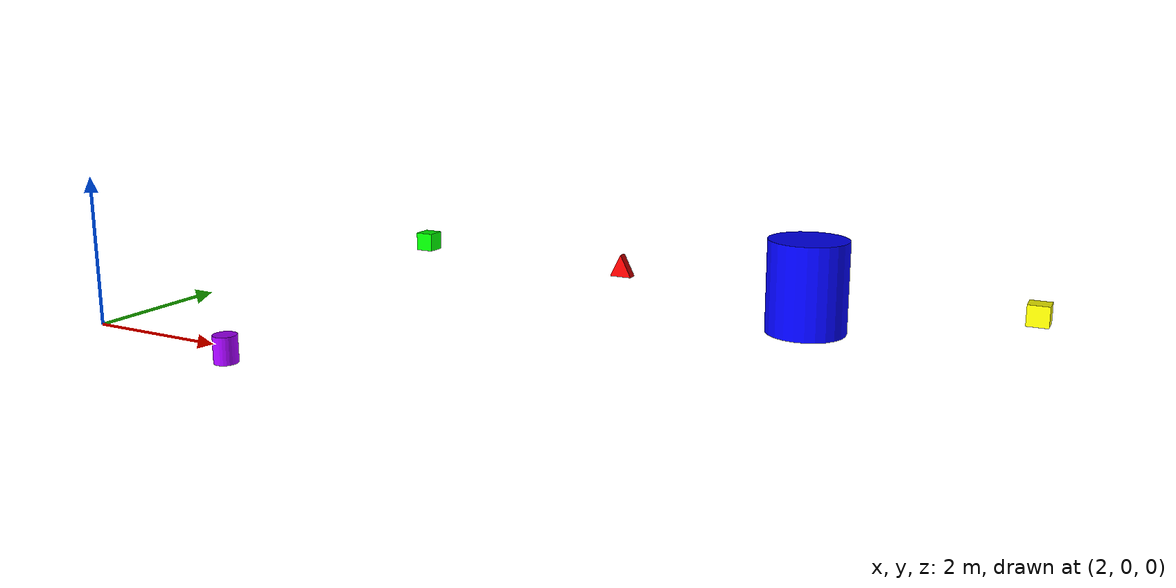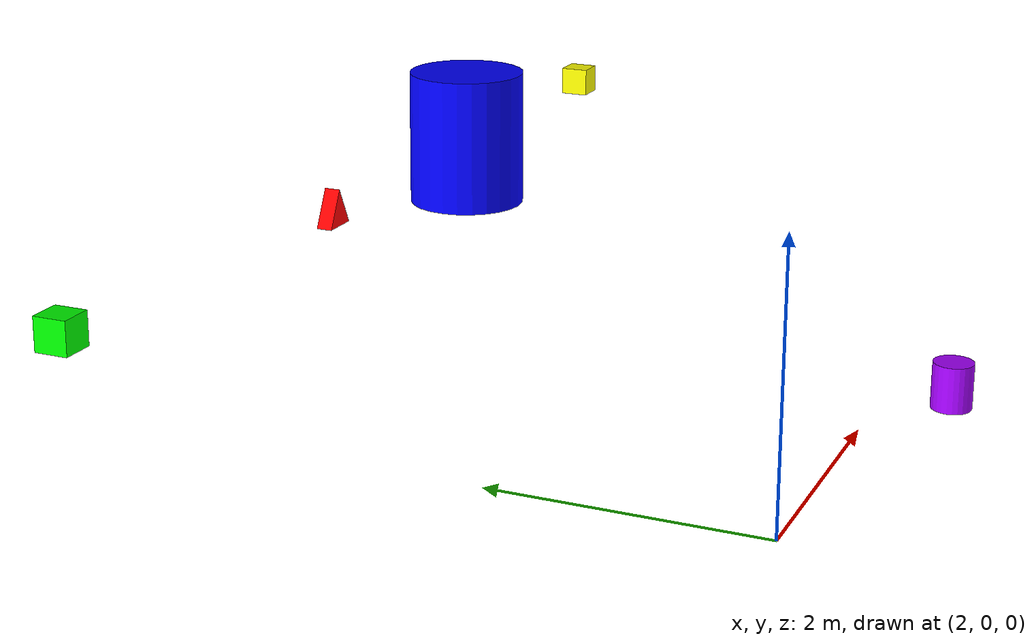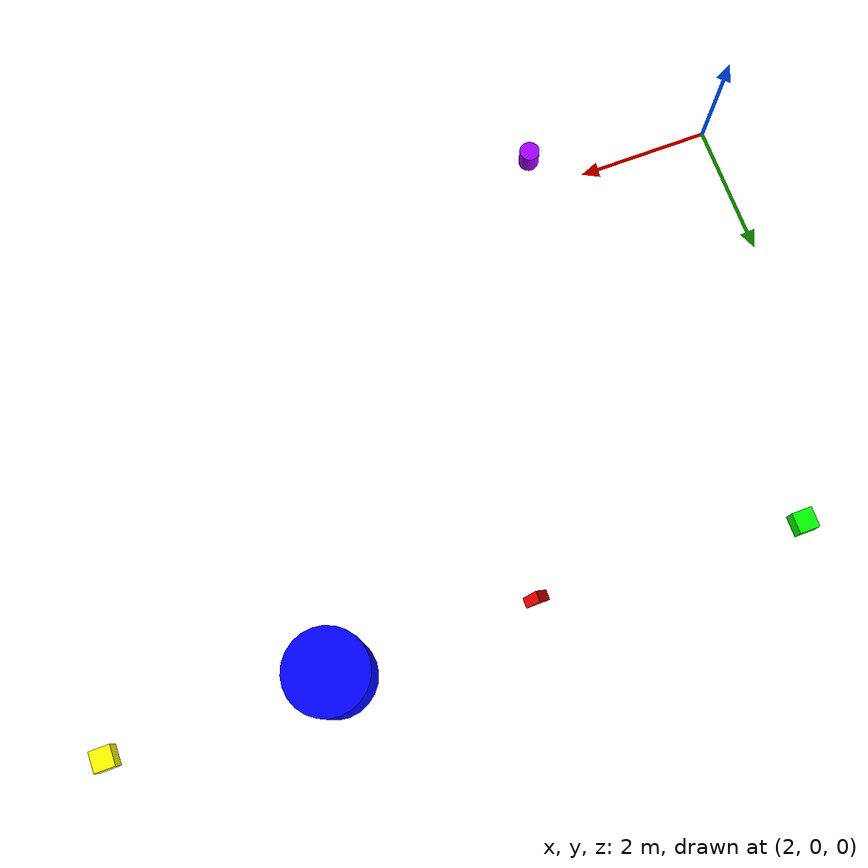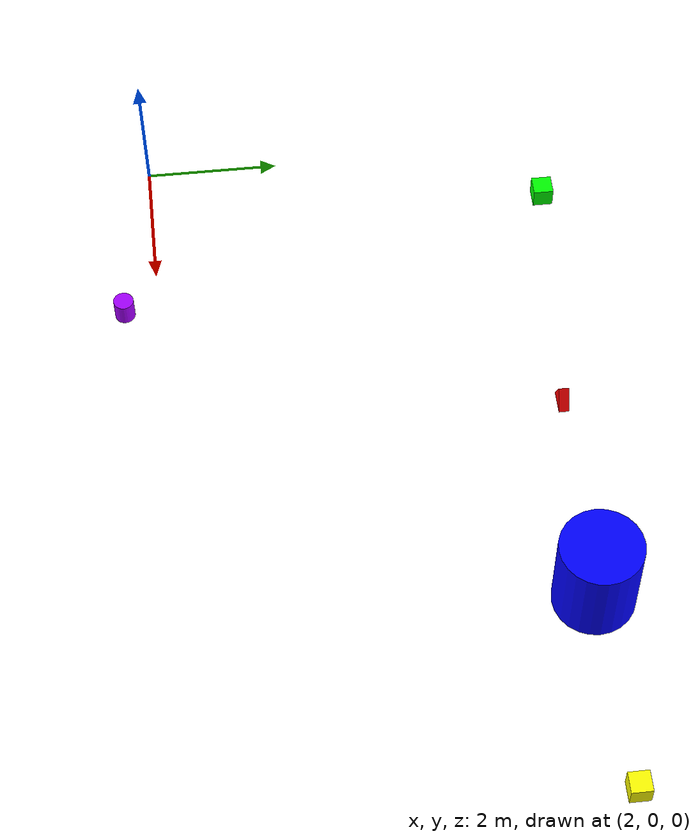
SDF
<sdf version="1.8">
 <world name="greenquartz_bto">
  <spherical_coordinates>
   <surface_model>EARTH_WGS84</surface_model>
   <world_frame_orientation>ENU</world_frame_orientation>
   <latitude_deg>30.0444</latitude_deg>
   <longitude_deg>31.2357</longitude_deg>
   <elevation>74.0</elevation>
   <heading_deg>0</heading_deg>
  </spherical_coordinates>
  <physics name="1ms" type="bullet-featherstone">
   <max_step_size>0.001</max_step_size>
   <real_time_factor>1.0</real_time_factor>
  </physics>
  <plugin filename="gz-sim-physics-system" name="gz::sim::systems::Physics"/>
  <plugin filename="gz-sim-sensors-system" name="gz::sim::systems::Sensors">
   <render_engine>ogre2</render_engine>
  </plugin>
  <plugin filename="gz-sim-user-commands-system" name="gz::sim::systems::UserCommands"/>
  <plugin filename="gz-sim-scene-broadcaster-system" name="gz::sim::systems::SceneBroadcaster"/>
  <plugin filename="gz-sim-navsat-system" name="gz::sim::systems::NavSat"/>
  <plugin filename="gz-sim-contact-system" name="gz::sim::systems::Contact"/>
  <light type="directional" name="sun">
   <pose>0 0 10 0 0 0</pose>
   <diffuse>0.8 0.8 0.8 1</diffuse>
   <specular>0.2 0.2 0.2 1</specular>
   <attenuation>
    <range>1000</range>
    <constant>0.9</constant>
    <linear>0.01</linear>
    <quadratic>0.001</quadratic>
   </attenuation>
   <direction>-0.5 0.1 -0.9</direction>
  </light>
  <scene><ambient>0.5 0.5 0.5 1</ambient><background>0.7 0.75 0.8 1</background></scene>
  <include>
   <uri>model://target_green_cube_living_room</uri>
   <name>target_green_cube_living_room</name>
   <pose>3.1 6.1 0.15 0 0 0</pose>
  </include>
  <include>
   <uri>model://target_red_triangle_bedroom1</uri>
   <name>target_red_triangle_bedroom1</name>
   <pose>7 5.8 0.175 0 0 0</pose>
  </include>
  <include>
   <uri>model://target_blue_cylinder_bedroom2</uri>
   <name>target_blue_cylinder_bedroom2</name>
   <pose>10 5.8 0.175 0 0 0</pose>
  </include>
  <include>
   <uri>model://target_yellow_cube_master_bedroom</uri>
   <name>target_yellow_cube_master_bedroom</name>
   <pose>13.2 5.8 0.15 0 0 0</pose>
  </include>
  <include>
   <uri>model://target_purple_cylinder_kitchen</uri>
   <name>target_purple_cylinder_kitchen</name>
   <pose>4.7 -0.5 0.175 0 0 0</pose>
  </include>
 </world>
</sdf>

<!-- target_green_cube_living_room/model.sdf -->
<sdf version="1.9">
  <model name="target_green_cube_living_room">
    <static>true</static>
    <link name="target">
      <collision name="collision">
        <geometry>
          <box>
            <size>0.3 0.3 0.3</size>
          </box>
        </geometry>
      </collision>
      <visual name="visual">
        <geometry>
          <box>
            <size>0.3 0.3 0.3</size>
          </box>
        </geometry>
        <material>
          <ambient>0 1 0 1</ambient>
          <diffuse>0 1 0 1</diffuse>
          <specular>0 0 0 1</specular>
          <pbr>
            <metal>
              <metalness>0</metalness>
              <roughness>1</roughness>
            </metal>
          </pbr>
        </material>
      </visual>
    </link>
  </model>
</sdf>

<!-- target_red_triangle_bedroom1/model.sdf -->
<sdf version="1.9">
  <model name="target_red_triangle_bedroom1">
    <static>true</static>
    <link name="target">
      <collision name="collision">
        <geometry>
          <mesh>
            <uri>model://target_red_triangle_bedroom1/meshes/triangle.dae</uri>
          </mesh>
        </geometry>
      </collision>
      <visual name="visual">
        <geometry>
          <mesh>
            <uri>model://target_red_triangle_bedroom1/meshes/triangle.dae</uri>
          </mesh>
        </geometry>
        <material>
          <ambient>1 0 0 1</ambient>
          <diffuse>1 0 0 1</diffuse>
          <specular>0 0 0 1</specular>
          <pbr>
            <metal>
              <metalness>0</metalness>
              <roughness>1</roughness>
            </metal>
          </pbr>
        </material>
      </visual>
    </link>
  </model>
</sdf>

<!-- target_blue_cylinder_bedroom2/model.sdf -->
<sdf version="1.9">
  <model name="target_blue_cylinder_bedroom2">
    <static>true</static>
    <link name="target">
      <collision name="collision">
        <geometry>
          <cylinder>
            <radius>0.6</radius>
            <length>1.4</length>
          </cylinder>
        </geometry>
      </collision>
      <visual name="visual">
        <geometry>
          <cylinder>
            <radius>0.6</radius>
            <length>1.4</length>
          </cylinder>
        </geometry>
        <material>
          <ambient>0 0 1 1</ambient>
          <diffuse>0 0 1 1</diffuse>
          <specular>0 0 0 1</specular>
          <pbr>
            <metal>
              <metalness>0</metalness>
              <roughness>1</roughness>
            </metal>
          </pbr>
        </material>
      </visual>
    </link>
  </model>
</sdf>

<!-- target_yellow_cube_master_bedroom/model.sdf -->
<sdf version="1.9">
  <model name="target_yellow_cube_master_bedroom">
    <static>true</static>
    <link name="target">
      <collision name="collision">
        <geometry>
          <box>
            <size>0.3 0.3 0.3</size>
          </box>
        </geometry>
      </collision>
      <visual name="visual">
        <geometry>
          <box>
            <size>0.3 0.3 0.3</size>
          </box>
        </geometry>
        <material>
          <ambient>1 1 0 1</ambient>
          <diffuse>1 1 0 1</diffuse>
          <specular>0 0 0 1</specular>
          <pbr>
            <metal>
              <metalness>0</metalness>
              <roughness>1</roughness>
            </metal>
          </pbr>
        </material>
      </visual>
    </link>
  </model>
</sdf>

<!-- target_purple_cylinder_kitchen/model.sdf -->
<sdf version="1.9">
  <model name="target_purple_cylinder_kitchen">
    <static>true</static>
    <link name="target">
      <collision name="collision">
        <geometry>
          <cylinder>
            <radius>.15</radius>
            <length>.35</length>
          </cylinder>
        </geometry>
      </collision>
      <visual name="visual">
        <geometry>
          <cylinder>
            <radius>.15</radius>
            <length>.35</length>
          </cylinder>
        </geometry>
        <material>
          <ambient>.65 0 1 1</ambient>
          <diffuse>.65 0 1 1</diffuse>
          <specular>0 0 0 1</specular>
          <pbr>
            <metal>
              <metalness>0</metalness>
              <roughness>1</roughness>
            </metal>
          </pbr>
        </material>
      </visual>
    </link>
  </model>
</sdf>
